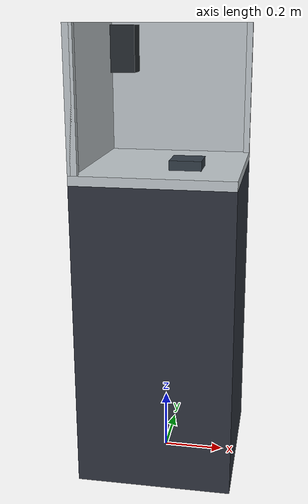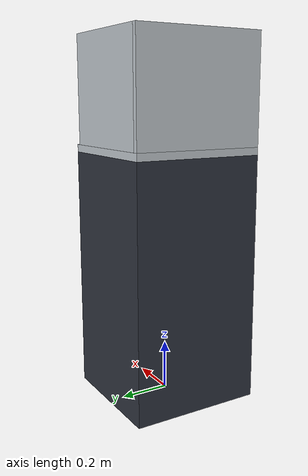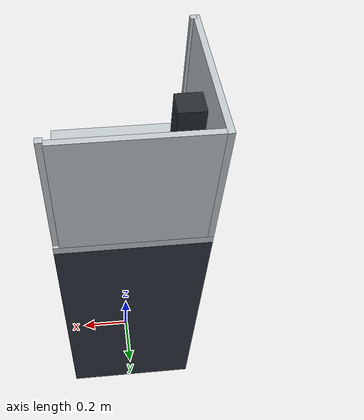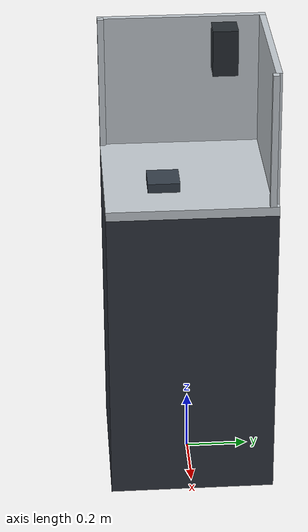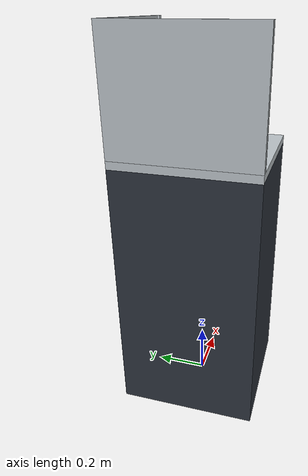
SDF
<?xml version="1.0"?>
<sdf version="1.6">
  <model name="bantam_tools_desktop_cnc">
    <static>true</static>
    <link name="enclosure">
      <collision name="stand_collision">
        <pose>0.0 0.0 0.5 0.0 0.0 0.0</pose>
        <geometry>
          <box>
            <size>.503 .531 1.0</size>
          </box>
        </geometry>
      </collision>
      <visual name="stand_visual">
        <pose>0.0 0.0 0.5 0.0 0.0 0.0</pose>
        <geometry>
          <box>
            <size>.503 .531 1.0</size>
          </box>
        </geometry>
        <material>
          <ambient>.18 .20 .24 1</ambient>
          <diffuse>.18 .20 .24 1</diffuse>
        </material>
      </visual>
      <collision name="base_collision">
        <pose>0.0 0.0 1.015 0.0 0.0 0.0</pose>
        <geometry>
          <box>
            <size>0.503 0.531 0.03</size>
          </box>
        </geometry>
      </collision>
      <visual name="base_visual">
        <pose>0.0 0.0 1.015 0.0 0.0 0.0</pose>
        <geometry>
          <box>
            <size>0.503 0.531 0.03</size>
          </box>
        </geometry>
        <material>
          <ambient>.75 .78 .80 1</ambient>
          <diffuse>.75 .78 .80 1</diffuse>
        </material>
      </visual>
      <collision name="rear_collision">
        <pose>-0.2415 0.0 1.2465 0.0 0.0 0.0</pose>
        <geometry>
          <box>
            <size>0.02 0.531 0.433</size>
          </box>
        </geometry>
      </collision>
      <visual name="rear_visual">
        <pose>-0.2415 0.0 1.2465 0.0 0.0 0.0</pose>
        <geometry>
          <box>
            <size>0.02 0.531 0.433</size>
          </box>
        </geometry>
        <material>
          <ambient>.75 .78 .80 1</ambient>
          <diffuse>.75 .78 .80 1</diffuse>
        </material>
      </visual>
      <collision name="left_side_collision">
        <pose>0.0 0.2555 1.2465 0.0 0.0 0.0</pose>
        <geometry>
          <box>
            <size>0.463 0.02 0.433</size>
          </box>
        </geometry>
      </collision>
      <visual name="left_side_visual">
        <pose>0.0 0.2555 1.2465 0.0 0.0 0.0</pose>
        <geometry>
          <box>
            <size>0.463 0.02 0.433</size>
          </box>
        </geometry>
        <material>
          <ambient>.75 .78 .80 1</ambient>
          <diffuse>.75 .78 .80 1</diffuse>
        </material>
      </visual>
      <collision name="front_post_collision">
        <pose>0.2415 0.2455 1.2465 0.0 0.0 0.0</pose>
        <geometry>
          <box>
            <size>0.02 0.02 0.433</size>
          </box>
        </geometry>
      </collision>
      <visual name="front_post_visual">
        <pose>0.2415 0.2455 1.2465 0.0 0.0 0.0</pose>
        <geometry>
          <box>
            <size>0.02 0.02 0.433</size>
          </box>
        </geometry>
        <material>
          <ambient>.75 .78 .80 1</ambient>
          <diffuse>.75 .78 .80 1</diffuse>
        </material>
      </visual>
      <collision name="side_post_collision">
        <pose>-0.2315 -0.2555 1.2465 0.0 0.0 0.0</pose>
        <geometry>
          <box>
            <size>0.02 0.02 0.433</size>
          </box>
        </geometry>
      </collision>
      <visual name="side_post_visual">
        <pose>-0.2315 -0.2555 1.2465 0.0 0.0 0.0</pose>
        <geometry>
          <box>
            <size>0.02 0.02 0.433</size>
          </box>
        </geometry>
        <material>
          <ambient>.75 .78 .80 1</ambient>
          <diffuse>.75 .78 .80 1</diffuse>
        </material>
      </visual>
      <collision name="spindle_collision">
        <pose>-0.16 0.13 1.38 0.0 0.0 0.0</pose>
        <geometry>
          <box>
            <size>0.08 0.08 0.15</size>
          </box>
        </geometry>
      </collision>
      <visual name="spindle_visual">
        <pose>-0.16 0.13 1.38 0.0 0.0 0.0</pose>
        <geometry>
          <box>
            <size>0.08 0.08 0.15</size>
          </box>
        </geometry>
        <material>
          <ambient>.15 .17 .19 1</ambient>
          <diffuse>.15 .17 .19 1</diffuse>
        </material>
      </visual>
    </link>
    <link name="workholding">
      <pose>0.08 -0.08 1.06 0.0 0.0 0.0</pose>
      <collision name="workholding_collision">
        <pose>0 0 -0.015 0 0 0</pose>
        <geometry>
          <box>
            <size>0.1 0.1 0.03</size>
          </box>
        </geometry>
      </collision>
      <visual name="workholding_visual">
        <pose>0 0 -0.015 0 0 0</pose>
        <geometry>
          <box>
            <size>0.1 0.1 0.03</size>
          </box>
        </geometry>
        <material>
          <ambient>.20 .24 .28 1</ambient>
          <diffuse>.20 .24 .28 1</diffuse>
        </material>
      </visual>
    </link>
    <link name="front_access">
      <pose>0.4 -0.08 1.25 0.0 0.0 0.0</pose>
    </link>
    <link name="side_access">
      <pose>0.08 -0.4 1.25 0.0 0.0 0.0</pose>
    </link>
  </model>
</sdf>
